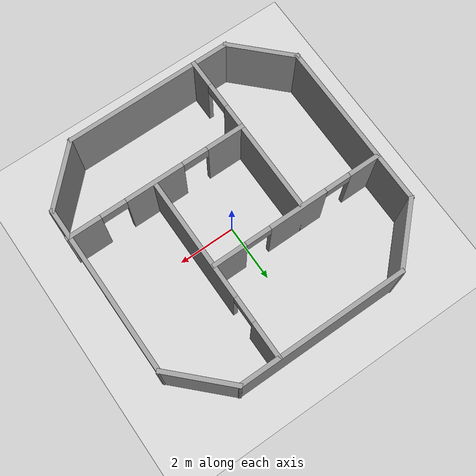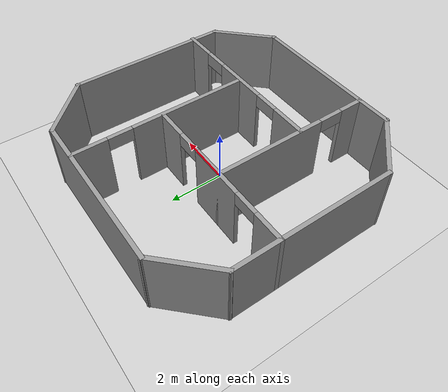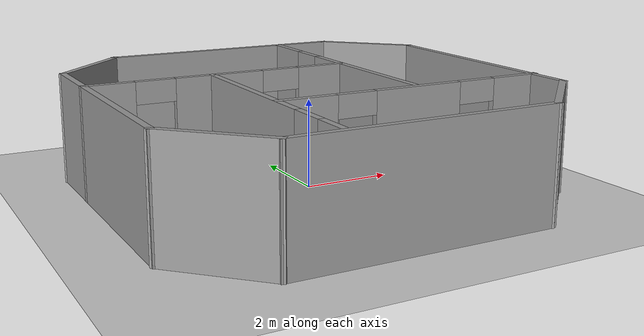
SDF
<sdf version="1.6">
 <world name="default">
  <light name="sun" type="directional">
   <pose>0 0 15 0 -0 0</pose>
   <diffuse>1 1 1 1</diffuse>
   <specular>0.1 0.1 0.1 1</specular>
   <attenuation>
    <range>1000</range>
    <constant>0.9</constant>
    <linear>0.01</linear>
    <quadratic>0.001</quadratic>
   </attenuation>
   <direction>-0.5 0.5 -1</direction>
  </light>
  <model name="ground_plane">
   <static>1</static>
   <link name="link">
    <collision name="collision">
     <geometry><plane><normal>0 0 1</normal><size>100 100</size></plane></geometry>
     <surface><friction><ode><mu>100</mu><mu2>50</mu2></ode></friction></surface>
    </collision>
    <visual name="visual">
     <transparency>1</transparency>
     <cast_shadows>0</cast_shadows>
     <geometry><plane><normal>0 0 1</normal><size>100 100</size></plane></geometry>
     <material>
      <script><uri>file://media/materials/scripts/gazebo.material</uri><name>Gazebo/Grey</name></script>
     </material>
    </visual>
   </link>
  </model>
  <gravity>0 0 -9.8</gravity>
  <magnetic_field>6e-06 2.3e-05 -4.2e-05</magnetic_field>
  <atmosphere type="adiabatic"/>
  <physics name="default_physics" default="0" type="ode">
   <max_step_size>0.001</max_step_size>
   <real_time_factor>1</real_time_factor>
   <real_time_update_rate>1000</real_time_update_rate>
  </physics>
  <scene><ambient>0.4 0.4 0.4 1</ambient><background>0.7 0.7 0.7 1</background><shadows>1</shadows></scene>
  <spherical_coordinates>
   <surface_model>EARTH_WGS84</surface_model>
   <latitude_deg>0</latitude_deg>
   <longitude_deg>0</longitude_deg>
   <elevation>0</elevation>
   <heading_deg>0</heading_deg>
  </spherical_coordinates>
  <model name="room8">
   <pose>-0.013947 -0.023654 0 0 -0 0</pose>
   <link name="Wall_19">
    <collision name="Wall_19_Collision">
     <geometry><box><size>6 0.15 2.5</size></box></geometry>
     <pose>0 0 1.25 0 -0 0</pose>
    </collision>
    <visual name="Wall_19_Visual">
     <pose>0 0 1.25 0 -0 0</pose>
     <geometry><box><size>6 0.15 2.5</size></box></geometry>
     <material>
      <script><uri>file://media/materials/scripts/gazebo.material</uri><name>Gazebo/Grey</name></script>
      <ambient>1 1 1 1</ambient>
     </material>
    </visual>
    <pose>-4.59947 0 0 0 0 -1.5708</pose>
   </link>
   <link name="Wall_20">
    <collision name="Wall_20_Collision">
     <geometry><box><size>2.5 0.15 2.5</size></box></geometry>
     <pose>0 0 1.25 0 -0 0</pose>
    </collision>
    <visual name="Wall_20_Visual">
     <pose>0 0 1.25 0 -0 0</pose>
     <geometry><box><size>2.5 0.15 2.5</size></box></geometry>
     <material>
      <script><uri>file://media/materials/scripts/gazebo.material</uri><name>Gazebo/Grey</name></script>
      <ambient>1 1 1 1</ambient>
     </material>
    </visual>
    <pose>-3.76862 -3.75585 0 0 0 -0.785398</pose>
   </link>
   <link name="Wall_21">
    <collision name="Wall_21_Collision">
     <geometry><box><size>6 0.15 2.5</size></box></geometry>
     <pose>0 0 1.25 0 -0 0</pose>
    </collision>
    <visual name="Wall_21_Visual">
     <pose>0 0 1.25 0 -0 0</pose>
     <geometry><box><size>6 0.15 2.5</size></box></geometry>
     <material>
      <script><uri>file://media/materials/scripts/gazebo.material</uri><name>Gazebo/Grey</name></script>
      <ambient>1 1 1 1</ambient>
     </material>
    </visual>
    <pose>-0.012766 -4.5867 0 0 -0 0</pose>
   </link>
   <link name="Wall_22">
    <collision name="Wall_22_Collision">
     <geometry><box><size>2.5 0.15 2.5</size></box></geometry>
     <pose>0 0 1.25 0 -0 0</pose>
    </collision>
    <visual name="Wall_22_Visual">
     <pose>0 0 1.25 0 -0 0</pose>
     <geometry><box><size>2.5 0.15 2.5</size></box></geometry>
     <material>
      <script><uri>file://media/materials/scripts/gazebo.material</uri><name>Gazebo/Grey</name></script>
      <ambient>1 1 1 1</ambient>
     </material>
    </visual>
    <pose>3.74309 -3.75585 0 0 -0 0.785398</pose>
   </link>
   <link name="Wall_23">
    <collision name="Wall_23_Collision">
     <geometry><box><size>6 0.15 2.5</size></box></geometry>
     <pose>0 0 1.25 0 -0 0</pose>
    </collision>
    <visual name="Wall_23_Visual">
     <pose>0 0 1.25 0 -0 0</pose>
     <geometry><box><size>6 0.15 2.5</size></box></geometry>
     <material>
      <script><uri>file://media/materials/scripts/gazebo.material</uri><name>Gazebo/Grey</name></script>
      <ambient>1 1 1 1</ambient>
     </material>
    </visual>
    <pose>4.57393 0 0 0 -0 1.5708</pose>
   </link>
   <link name="Wall_24">
    <collision name="Wall_24_Collision">
     <geometry><box><size>2.5 0.15 2.5</size></box></geometry>
     <pose>0 0 1.25 0 -0 0</pose>
    </collision>
    <visual name="Wall_24_Visual">
     <pose>0 0 1.25 0 -0 0</pose>
     <geometry><box><size>2.5 0.15 2.5</size></box></geometry>
     <material>
      <script><uri>file://media/materials/scripts/gazebo.material</uri><name>Gazebo/Grey</name></script>
      <ambient>1 1 1 1</ambient>
     </material>
    </visual>
    <pose>3.74309 3.75585 0 0 -0 2.35619</pose>
   </link>
   <link name="Wall_25">
    <collision name="Wall_25_Collision">
     <geometry><box><size>6 0.15 2.5</size></box></geometry>
     <pose>0 0 1.25 0 -0 0</pose>
    </collision>
    <visual name="Wall_25_Visual">
     <pose>0 0 1.25 0 -0 0</pose>
     <geometry><box><size>6 0.15 2.5</size></box></geometry>
     <material>
      <script><uri>file://media/materials/scripts/gazebo.material</uri><name>Gazebo/Grey</name></script>
      <ambient>1 1 1 1</ambient>
     </material>
    </visual>
    <pose>-0.012766 4.5867 0 0 -0 3.14159</pose>
   </link>
   <link name="Wall_26">
    <collision name="Wall_26_Collision">
     <geometry><box><size>2.5 0.15 2.5</size></box></geometry>
     <pose>0 0 1.25 0 -0 0</pose>
    </collision>
    <visual name="Wall_26_Visual">
     <pose>0 0 1.25 0 -0 0</pose>
     <geometry><box><size>2.5 0.15 2.5</size></box></geometry>
     <material>
      <script><uri>file://media/materials/scripts/gazebo.material</uri><name>Gazebo/Grey</name></script>
      <ambient>1 1 1 1</ambient>
     </material>
    </visual>
    <pose>-3.76862 3.75585 0 0 0 -2.35619</pose>
   </link>
   <link name="Wall_29">
    <pose>-1.54947 1.265 0 0 -0 0</pose>
    <visual name="Wall_29_Visual_0">
     <pose>-2.5425 0 1.25 0 -0 0</pose>
     <geometry><box><size>1.165 0.15 2.5</size></box></geometry>
     <material>
      <script><uri>file://media/materials/scripts/gazebo.material</uri><name>Gazebo/Grey</name></script>
      <ambient>1 1 1 1</ambient>
     </material>
    </visual>
    <collision name="Wall_29_Collision_0">
     <geometry><box><size>1.165 0.15 2.5</size></box></geometry>
     <pose>-2.5425 0 1.25 0 -0 0</pose>
    </collision>
    <visual name="Wall_29_Visual_1">
     <pose>-0.02 0 1.25 0 -0 0</pose>
     <geometry><box><size>2.08 0.15 2.5</size></box></geometry>
     <material>
      <script><uri>file://media/materials/scripts/gazebo.material</uri><name>Gazebo/Grey</name></script>
      <ambient>1 1 1 1</ambient>
     </material>
    </visual>
    <collision name="Wall_29_Collision_1">
     <geometry><box><size>2.08 0.15 2.5</size></box></geometry>
     <pose>-0.02 0 1.25 0 -0 0</pose>
    </collision>
    <visual name="Wall_29_Visual_2">
     <pose>2.5225 0 1.25 0 -0 0</pose>
     <geometry><box><size>1.205 0.15 2.5</size></box></geometry>
     <material>
      <script><uri>file://media/materials/scripts/gazebo.material</uri><name>Gazebo/Grey</name></script>
      <ambient>1 1 1 1</ambient>
     </material>
    </visual>
    <collision name="Wall_29_Collision_2">
     <geometry><box><size>1.205 0.15 2.5</size></box></geometry>
     <pose>2.5225 0 1.25 0 -0 0</pose>
    </collision>
    <visual name="Wall_29_Visual_3">
     <pose>-1.51 0 2.25 0 -0 0</pose>
     <geometry><box><size>0.9 0.15 0.5</size></box></geometry>
     <material>
      <script><uri>file://media/materials/scripts/gazebo.material</uri><name>Gazebo/Grey</name></script>
      <ambient>1 1 1 1</ambient>
     </material>
    </visual>
    <collision name="Wall_29_Collision_3">
     <geometry><box><size>0.9 0.15 0.5</size></box></geometry>
     <pose>-1.51 0 2.25 0 -0 0</pose>
    </collision>
    <visual name="Wall_29_Visual_4">
     <pose>1.47 0 2.25 0 -0 0</pose>
     <geometry><box><size>0.9 0.15 0.5</size></box></geometry>
     <material>
      <script><uri>file://media/materials/scripts/gazebo.material</uri><name>Gazebo/Grey</name></script>
      <ambient>1 1 1 1</ambient>
     </material>
    </visual>
    <collision name="Wall_29_Collision_4">
     <geometry><box><size>0.9 0.15 0.5</size></box></geometry>
     <pose>1.47 0 2.25 0 -0 0</pose>
    </collision>
   </link>
   <link name="Wall_31">
    <pose>1.54053 1.39 0 0 0 -1.5708</pose>
    <visual name="Wall_31_Visual_0">
     <pose>-2.5875 0 1.25 0 -0 0</pose>
     <geometry><box><size>1.325 0.15 2.5</size></box></geometry>
     <material>
      <script><uri>file://media/materials/scripts/gazebo.material</uri><name>Gazebo/Grey</name></script>
      <ambient>1 1 1 1</ambient>
     </material>
    </visual>
    <collision name="Wall_31_Collision_0">
     <geometry><box><size>1.325 0.15 2.5</size></box></geometry>
     <pose>-2.5875 0 1.25 0 -0 0</pose>
    </collision>
    <visual name="Wall_31_Visual_1">
     <pose>1.1125 0 1.25 0 -0 0</pose>
     <geometry><box><size>4.275 0.15 2.5</size></box></geometry>
     <material>
      <script><uri>file://media/materials/scripts/gazebo.material</uri><name>Gazebo/Grey</name></script>
      <ambient>1 1 1 1</ambient>
     </material>
    </visual>
    <collision name="Wall_31_Collision_1">
     <geometry><box><size>4.275 0.15 2.5</size></box></geometry>
     <pose>1.1125 0 1.25 0 -0 0</pose>
    </collision>
    <visual name="Wall_31_Visual_2">
     <pose>-1.475 0 2.25 0 -0 0</pose>
     <geometry><box><size>0.9 0.15 0.5</size></box></geometry>
     <material>
      <script><uri>file://media/materials/scripts/gazebo.material</uri><name>Gazebo/Grey</name></script>
      <ambient>1 1 1 1</ambient>
     </material>
    </visual>
    <collision name="Wall_31_Collision_2">
     <geometry><box><size>0.9 0.15 0.5</size></box></geometry>
     <pose>-1.475 0 2.25 0 -0 0</pose>
    </collision>
   </link>
   <link name="Wall_33">
    <pose>-1.71947 -1.66 0 0 0 -1.5708</pose>
    <visual name="Wall_33_Visual_0">
     <pose>-0.9375 0 1.25 0 -0 0</pose>
     <geometry><box><size>4.125 0.15 2.5</size></box></geometry>
     <material>
      <script><uri>file://media/materials/scripts/gazebo.material</uri><name>Gazebo/Grey</name></script>
      <ambient>1 1 1 1</ambient>
     </material>
    </visual>
    <collision name="Wall_33_Collision_0">
     <geometry><box><size>4.125 0.15 2.5</size></box></geometry>
     <pose>-0.9375 0 1.25 0 -0 0</pose>
    </collision>
    <visual name="Wall_33_Visual_1">
     <pose>2.5125 0 1.25 0 -0 0</pose>
     <geometry><box><size>0.975 0.15 2.5</size></box></geometry>
     <material>
      <script><uri>file://media/materials/scripts/gazebo.material</uri><name>Gazebo/Grey</name></script>
      <ambient>1 1 1 1</ambient>
     </material>
    </visual>
    <collision name="Wall_33_Collision_1">
     <geometry><box><size>0.975 0.15 2.5</size></box></geometry>
     <pose>2.5125 0 1.25 0 -0 0</pose>
    </collision>
    <visual name="Wall_33_Visual_2">
     <pose>1.575 0 2.25 0 -0 0</pose>
     <geometry><box><size>0.9 0.15 0.5</size></box></geometry>
     <material>
      <script><uri>file://media/materials/scripts/gazebo.material</uri><name>Gazebo/Grey</name></script>
      <ambient>1 1 1 1</ambient>
     </material>
    </visual>
    <collision name="Wall_33_Collision_2">
     <geometry><box><size>0.9 0.15 0.5</size></box></geometry>
     <pose>1.575 0 2.25 0 -0 0</pose>
    </collision>
   </link>
   <link name="Wall_35">
    <pose>1.45553 -1.935 0 0 -0 0</pose>
    <visual name="Wall_35_Visual_0">
     <pose>-2.5575 0 1.25 0 -0 0</pose>
     <geometry><box><size>1.385 0.15 2.5</size></box></geometry>
     <material>
      <script><uri>file://media/materials/scripts/gazebo.material</uri><name>Gazebo/Grey</name></script>
      <ambient>1 1 1 1</ambient>
     </material>
    </visual>
    <collision name="Wall_35_Collision_0">
     <geometry><box><size>1.385 0.15 2.5</size></box></geometry>
     <pose>-2.5575 0 1.25 0 -0 0</pose>
    </collision>
    <visual name="Wall_35_Visual_1">
     <pose>0.075 0 1.25 0 -0 0</pose>
     <geometry><box><size>2.08 0.15 2.5</size></box></geometry>
     <material>
      <script><uri>file://media/materials/scripts/gazebo.material</uri><name>Gazebo/Grey</name></script>
      <ambient>1 1 1 1</ambient>
     </material>
    </visual>
    <collision name="Wall_35_Collision_1">
     <geometry><box><size>2.08 0.15 2.5</size></box></geometry>
     <pose>0.075 0 1.25 0 -0 0</pose>
    </collision>
    <visual name="Wall_35_Visual_2">
     <pose>2.6325 0 1.25 0 -0 0</pose>
     <geometry><box><size>1.235 0.15 2.5</size></box></geometry>
     <material>
      <script><uri>file://media/materials/scripts/gazebo.material</uri><name>Gazebo/Grey</name></script>
      <ambient>1 1 1 1</ambient>
     </material>
    </visual>
    <collision name="Wall_35_Collision_2">
     <geometry><box><size>1.235 0.15 2.5</size></box></geometry>
     <pose>2.6325 0 1.25 0 -0 0</pose>
    </collision>
    <visual name="Wall_35_Visual_3">
     <pose>-1.415 0 2.25 0 -0 0</pose>
     <geometry><box><size>0.9 0.15 0.5</size></box></geometry>
     <material>
      <script><uri>file://media/materials/scripts/gazebo.material</uri><name>Gazebo/Grey</name></script>
      <ambient>1 1 1 1</ambient>
     </material>
    </visual>
    <collision name="Wall_35_Collision_3">
     <geometry><box><size>0.9 0.15 0.5</size></box></geometry>
     <pose>-1.415 0 2.25 0 -0 0</pose>
    </collision>
    <visual name="Wall_35_Visual_4">
     <pose>1.565 0 2.25 0 -0 0</pose>
     <geometry><box><size>0.9 0.15 0.5</size></box></geometry>
     <material>
      <script><uri>file://media/materials/scripts/gazebo.material</uri><name>Gazebo/Grey</name></script>
      <ambient>1 1 1 1</ambient>
     </material>
    </visual>
    <collision name="Wall_35_Collision_4">
     <geometry><box><size>0.9 0.15 0.5</size></box></geometry>
     <pose>1.565 0 2.25 0 -0 0</pose>
    </collision>
   </link>
   <static>1</static>
  </model>
 </world>
</sdf>
